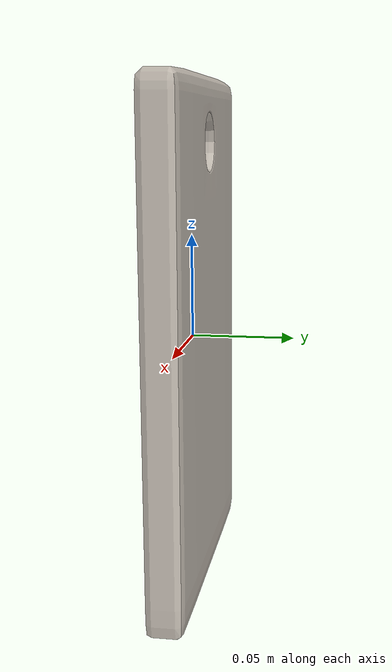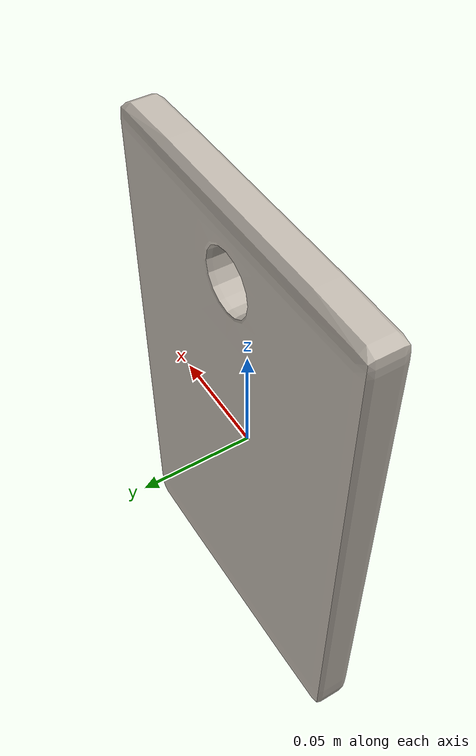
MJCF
<mujoco model="cutting_board_11">
  <asset>
    <mesh file="visual/model_normalized_0.obj" name="model_normalized_0_vis" scale="0.2500000000000001 0.2500000000000001 0.2500000000000001" refquat="1.0 0.0 0.0 0.0" />
    <texture type="2d" name="image0" file="visual/image0.png" />
    <material name="lambert1.002" texture="image0" specular="0.5" shininess="0.25" />
  </asset>
  <worldbody>
    <body>
      <body name="object">
        <geom solimp="0.998 0.998 0.001" solref="0.001 1" density="1000" friction="0.95 0.3 0.1" type="mesh" mesh="model_normalized_0_vis" conaffinity="0" contype="0" group="1" material="lambert1.002" />
        <geom solimp="0.998 0.998 0.001" solref="0.001 1" density="1000" friction="0.95 0.3 0.1" type="box" group="0" rgba="0.8 0.8 0.8 0.0" size="0.07357354000000003 0.12273938750000006 0.007341810000000004" pos="-2.8637499999983897e-06 0.0 1.1774999999995123e-06" />
      </body>
      <site rgba="0 0 0 0" size="0.005" pos="-2.8637499999983897e-06 0.0 -0.007340632500000005" name="bottom_site" />
      <site rgba="0 0 0 0" size="0.005" pos="-2.8637499999983897e-06 0.0 0.007342987500000004" name="top_site" />
      <site rgba="0 0 0 0" size="0.005" pos="0.07357354000000003 0.12273938750000006 1.1774999999999464e-06" name="horizontal_radius_site" />
    </body>
  </worldbody>
</mujoco>
